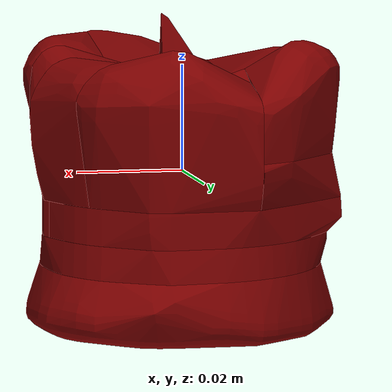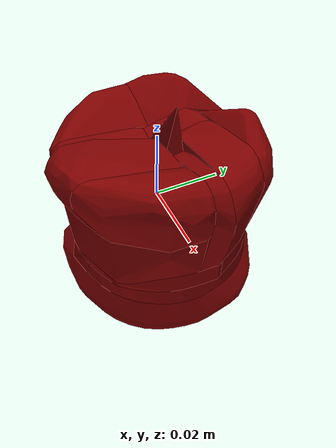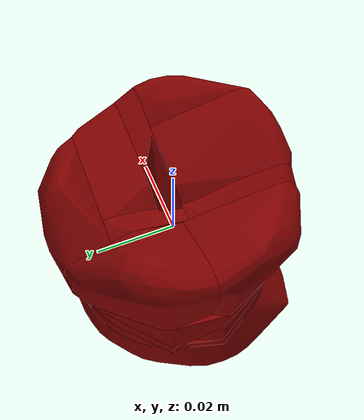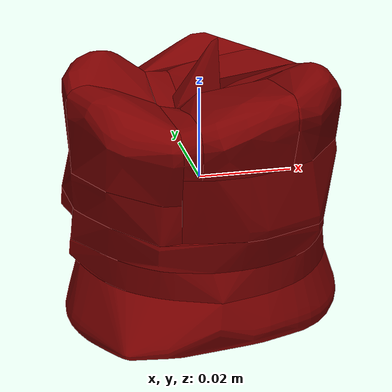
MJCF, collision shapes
<?xml version='1.0' encoding='utf-8'?>
<mujoco model="candle_0">
  <asset>
    <mesh file="visual/model_normalized_0.obj" name="model_normalized_0_vis" scale="0.05999999999999998 0.05999999999999998 0.05999999999999998" refquat="0.7071067811865475 0.0 -0.7071067811865476 0.0" />
    <texture type="2d" name="image0" file="visual/image0.png" />
    <material name="defaultMat.005" texture="image0" specular="0.5" shininess="0.25" />
    <mesh file="collision/collision_mesh_collision_0.obj" name="candle_collision_mesh_0" scale="0.05999999999999998 0.05999999999999998 0.05999999999999998" refquat="0.7071067811865475 0.0 -0.7071067811865476 0.0" />
    <mesh file="collision/collision_mesh_collision_1.obj" name="candle_collision_mesh_1" scale="0.05999999999999998 0.05999999999999998 0.05999999999999998" refquat="0.7071067811865475 0.0 -0.7071067811865476 0.0" />
    <mesh file="collision/collision_mesh_collision_2.obj" name="candle_collision_mesh_2" scale="0.05999999999999998 0.05999999999999998 0.05999999999999998" refquat="0.7071067811865475 0.0 -0.7071067811865476 0.0" />
    <mesh file="collision/collision_mesh_collision_3.obj" name="candle_collision_mesh_3" scale="0.05999999999999998 0.05999999999999998 0.05999999999999998" refquat="0.7071067811865475 0.0 -0.7071067811865476 0.0" />
    <mesh file="collision/collision_mesh_collision_4.obj" name="candle_collision_mesh_4" scale="0.05999999999999998 0.05999999999999998 0.05999999999999998" refquat="0.7071067811865475 0.0 -0.7071067811865476 0.0" />
    <mesh file="collision/collision_mesh_collision_5.obj" name="candle_collision_mesh_5" scale="0.05999999999999998 0.05999999999999998 0.05999999999999998" refquat="0.7071067811865475 0.0 -0.7071067811865476 0.0" />
    <mesh file="collision/collision_mesh_collision_6.obj" name="candle_collision_mesh_6" scale="0.05999999999999998 0.05999999999999998 0.05999999999999998" refquat="0.7071067811865475 0.0 -0.7071067811865476 0.0" />
    <mesh file="collision/collision_mesh_collision_7.obj" name="candle_collision_mesh_7" scale="0.05999999999999998 0.05999999999999998 0.05999999999999998" refquat="0.7071067811865475 0.0 -0.7071067811865476 0.0" />
    <mesh file="collision/collision_mesh_collision_8.obj" name="candle_collision_mesh_8" scale="0.05999999999999998 0.05999999999999998 0.05999999999999998" refquat="0.7071067811865475 0.0 -0.7071067811865476 0.0" />
    <mesh file="collision/collision_mesh_collision_9.obj" name="candle_collision_mesh_9" scale="0.05999999999999998 0.05999999999999998 0.05999999999999998" refquat="0.7071067811865475 0.0 -0.7071067811865476 0.0" />
    <mesh file="collision/collision_mesh_collision_10.obj" name="candle_collision_mesh_10" scale="0.05999999999999998 0.05999999999999998 0.05999999999999998" refquat="0.7071067811865475 0.0 -0.7071067811865476 0.0" />
    <mesh file="collision/collision_mesh_collision_11.obj" name="candle_collision_mesh_11" scale="0.05999999999999998 0.05999999999999998 0.05999999999999998" refquat="0.7071067811865475 0.0 -0.7071067811865476 0.0" />
    <mesh file="collision/collision_mesh_collision_12.obj" name="candle_collision_mesh_12" scale="0.05999999999999998 0.05999999999999998 0.05999999999999998" refquat="0.7071067811865475 0.0 -0.7071067811865476 0.0" />
    <mesh file="collision/collision_mesh_collision_13.obj" name="candle_collision_mesh_13" scale="0.05999999999999998 0.05999999999999998 0.05999999999999998" refquat="0.7071067811865475 0.0 -0.7071067811865476 0.0" />
    <mesh file="collision/collision_mesh_collision_14.obj" name="candle_collision_mesh_14" scale="0.05999999999999998 0.05999999999999998 0.05999999999999998" refquat="0.7071067811865475 0.0 -0.7071067811865476 0.0" />
    <mesh file="collision/collision_mesh_collision_15.obj" name="candle_collision_mesh_15" scale="0.05999999999999998 0.05999999999999998 0.05999999999999998" refquat="0.7071067811865475 0.0 -0.7071067811865476 0.0" />
  </asset>
  <default>
    <default class="region">
      <geom group="1" conaffinity="0" contype="0" rgba="0 1 0 0" />
    </default>
    <default class="collision">
      <geom group="0" rgba="0.5 0 0 0.5" density="1000.0" />
    </default>
  </default>
  <worldbody>
    <body>
      <body name="object">
        <geom solimp="0.998 0.998 0.001" solref="0.001 1" density="100" friction="0.95 0.3 0.1" type="mesh" mesh="model_normalized_0_vis" conaffinity="0" contype="0" group="1" material="defaultMat.005" />
        <geom class="region" name="reg_bbox" type="box" pos="0.0 -6.143999999996816e-07 4.289999999906867e-08" size="0.02991555179999999 0.029888601599999988 0.02999877689999999" />
        <geom mesh="candle_collision_mesh_0" type="mesh" class="collision" />
        <geom mesh="candle_collision_mesh_1" type="mesh" class="collision" />
        <geom mesh="candle_collision_mesh_2" type="mesh" class="collision" />
        <geom mesh="candle_collision_mesh_3" type="mesh" class="collision" />
        <geom mesh="candle_collision_mesh_4" type="mesh" class="collision" />
        <geom mesh="candle_collision_mesh_5" type="mesh" class="collision" />
        <geom mesh="candle_collision_mesh_6" type="mesh" class="collision" />
        <geom mesh="candle_collision_mesh_7" type="mesh" class="collision" />
        <geom mesh="candle_collision_mesh_8" type="mesh" class="collision" />
        <geom mesh="candle_collision_mesh_9" type="mesh" class="collision" />
        <geom mesh="candle_collision_mesh_10" type="mesh" class="collision" />
        <geom mesh="candle_collision_mesh_11" type="mesh" class="collision" />
        <geom mesh="candle_collision_mesh_12" type="mesh" class="collision" />
        <geom mesh="candle_collision_mesh_13" type="mesh" class="collision" />
        <geom mesh="candle_collision_mesh_14" type="mesh" class="collision" />
        <geom mesh="candle_collision_mesh_15" type="mesh" class="collision" />
      </body>
    <site rgba="0 0 0 0" size="0.005" pos="0 0 -0.029998734" name="bottom_site" /><site rgba="0 0 0 0" size="0.005" pos="0 0 0.02999882" name="top_site" /><site rgba="0 0 0 0" size="0.005" pos="0.029915552 0.029915552 0" name="horizontal_radius_site" /></body>
  </worldbody>
</mujoco>
